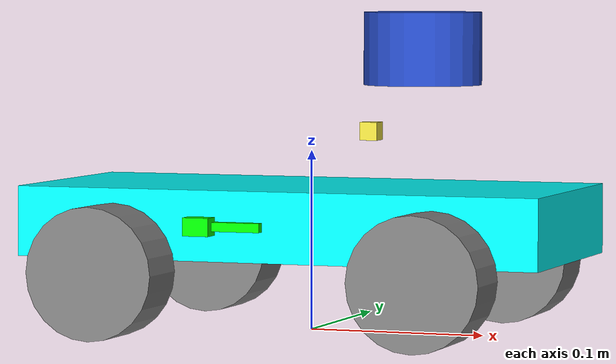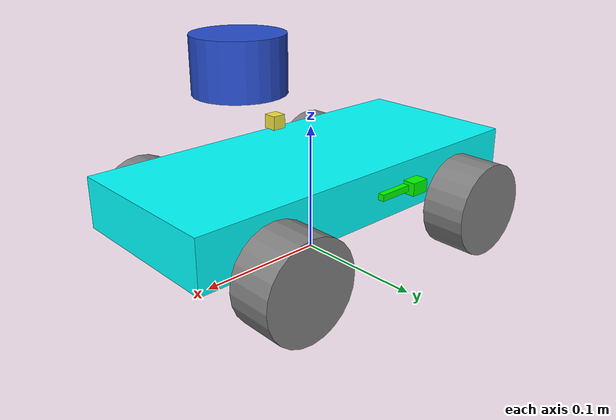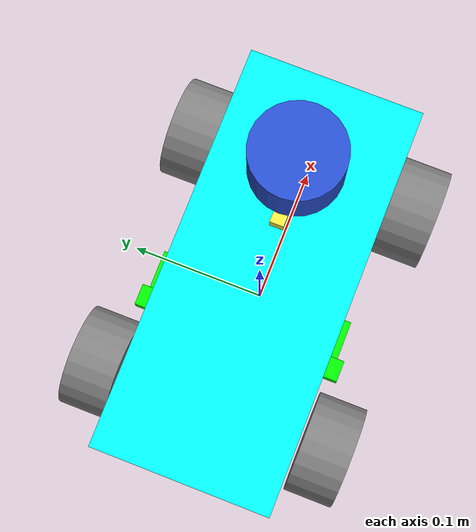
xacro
<?xml version="1.0"?>
<robot name="dummy1" xmlns:xacro="http://www.ros.org/wiki/xacro">
    <xacro:property name="base_width" value="0.130"/>
    <xacro:property name="base_length" value="0.3"/>
    <xacro:property name="base_height" value="0.039"/>

    <xacro:property name="wheel_radius" value="0.0365"/>
    <xacro:property name="wheel_width" value="0.035"/>
    <xacro:property name="wheel_ygap" value="0.020"/>
    <xacro:property name="wheel_zoff" value="0.025"/>
    <xacro:property name="wheel_xoff" value="0.183"/>
    <xacro:property name="bar_yoff" value="0.06"/>

    <material name="Gray">
        <color rgba="0.5 0.5 0.5 1.0"/>
    </material>
    <material name="Green">
        <color rgba="0.0 1.0 0.0 1.0"/>
    </material>
    <link name="base_footprint"/>

    <link name="base_link">
        <visual>
            <origin xyz="0.0 0.0 0.0" rpy="0.0 0.0 0.0"/>
            <geometry>
                <box size="${base_length} ${base_width} ${base_height}"/>
            </geometry>
            <material name="Cyan">
                <color rgba="0 1.0 1.0 1.0"/>
            </material>
        </visual>
    </link>

    <gazebo reference="base_link">
        <material>Gazebo/Black</material>
    </gazebo>

    <joint name="base_joint" type="fixed">
        <parent link="base_footprint"/>
        <child link="base_link"/>
        <origin xyz="0.0 0.0 ${wheel_radius + wheel_zoff}" rpy="0.0 0.0 0.0"/>
    </joint>
    <link name="laser">
        <visual>
            <geometry>
                <cylinder radius="0.0325" length="0.04"/>
            </geometry>
        </visual>
    </link>
    <joint name="laser_joint" type="fixed">
        <origin xyz="0.065 0.0 0.0960" />
        <parent link="base_link"/>
        <child link="laser"/>
    </joint>

    <gazebo reference="laser">
        <sensor name="lidar" type="ray">
            <always_on>true</always_on>
            <visualize>true</visualize>
            <update_rate>10</update_rate>
            <ray>
                <scan>
                    <horizontal>
                        <samples>5000</samples>
                        <resolution>0.500000</resolution>
                        <min_angle>-3.14159</min_angle>
                        <max_angle>3.14159</max_angle>
                    </horizontal>
                </scan>
                <range>
                    <min>0.12</min>
                    <max>10.0</max>
                    <resolution>0.015</resolution>
                </range>
                <noise>
                    <type>gaussian</type>
                    <mean>0.0</mean>
                    <stddev>0.01</stddev>
                </noise>
            </ray>
            <plugin name="scan" filename="libgazebo_ros_ray_sensor.so">
                <output_type>sensor_msgs/LaserScan</output_type>
                <frame_name>laser</frame_name>
            </plugin>
        </sensor>
    </gazebo>
    <gazebo reference="laser">
        <mu1>0.01</mu1>
        <mu2>0.01</mu2>
        <material>Gazebo/Blue</material>
    </gazebo>

<xacro:macro name="wheel" params="prefix x_reflect y_reflect">
    <link name="${prefix}_link">
        <visual>
            <origin xyz="0.0 0.0 0.0" rpy="${pi/2} 0.0 0.0"/>
            <geometry>
                <cylinder radius="${wheel_radius}" length="${wheel_width}"/>
            </geometry>
            <material name="Gray"/>
        </visual>
    </link>
    <joint name="${prefix}_joint" type="continuous">
        <parent link="base_link"/>
        <child link="${prefix}_link"/>
        <axis xyz="0.0 1.0 0.0"/>
        <origin xyz="${x_reflect*wheel_xoff/2} ${y_reflect*(base_width/2+wheel_ygap)} ${-wheel_zoff}" rpy="0.0 0.0 0.0"/>
    </joint>
</xacro:macro>
    <xacro:wheel prefix="driveRwhl_l" x_reflect="-1" y_reflect="1"/>
    <xacro:wheel prefix="driveRwhl_r" x_reflect="-1" y_reflect="-1"/>
<link name="steer_link">
    <visual>
        <origin xyz="-0.02 0.0 0.0" />
        <geometry>
            <box size="0.03 0.01995 0.005"/>
        </geometry>
        <material name="Gray"/>
    </visual>
    </link>
    <joint name="steer_joint" type="revolute">
        <origin xyz="0.0 0.0 0.0" rpy="0.0 0.0 0.0"/>
        <parent link="base_link"/>
        <child link="steer_link"/>
        <axis xyz="0.0 0.0 1"/>
        <limit lower="-0.5" upper="0.5" effort="100.0" velocity="10.0"/>
    </joint>
    <link name="front_L_bar_link">
        <visual>
            <origin xyz="-0.02 0.0 0.0" rpy="0.0 0.0 0.0"/>
            <geometry>
                <box size="0.03 0.01995 0.005"/>
            </geometry>
            <material name="Green"/>
        </visual>
    </link>
    <link name="front_R_bar_link">
        <visual>
            <origin xyz="-0.02 0.0 0.0" rpy="0.0 0.0 0.0"/>
            <geometry>
                <box size="0.03 0.01995 0.005"/>
            </geometry>
            <material name="Green"/>
        </visual>
    </link>
    <joint name="front_R_bar_joint" type="revolute">
        <origin xyz="0.0 ${-bar_yoff} 0.0" rpy="0.0 0.0 0.0"/>
        <parent link="base_link"/>
        <child link="front_R_bar_link"/>
        <axis xyz="0.0 0.0 1"/>
        <limit lower="-0.5" upper="0.5" effort="100" velocity="10.0"/>
    </joint>
    <joint name="front_L_bar_joint" type="revolute">
        <origin xyz="0.0 ${bar_yoff} 0.0" rpy="0.0 0.0 0.0"/>
        <parent link="base_link"/>
        <child link="front_L_bar_link"/>
        <axis xyz="0.0 0.0 1"/>
        <limit lower="-0.5" upper="0.5" effort="100" velocity="10.0"/>
    </joint>

    <link name="front_L_wheel_link">
        <visual>
            <origin rpy="${pi/2} 0.0 0.0"/>
            <geometry>
                <cylinder radius="${wheel_radius}" length="${wheel_width}"/>
            </geometry>
            <material name="Gray"/>
        </visual>
    </link>
    <joint name="front_left_wheel_joint" type="continuous">
        <parent link="front_L_bar_link"/>
        <child link="front_L_wheel_link"/>
        <axis xyz="0.0 1.0 0.0"/>
        <origin xyz="${wheel_xoff/2} ${(base_width/2-bar_yoff+(wheel_width/2))} ${-wheel_zoff}" rpy="0.0 0.0 0.0"/>
    </joint>

    <link name="front_R_wheel_link">
        <visual>
            <origin rpy="${pi/2} 0 0"/>
            <geometry>
                <cylinder radius="${wheel_radius}" length="${wheel_width}"/>
            </geometry>
            <material name="Gray"/>
        </visual>
    </link>
    <joint name="front_right_wheel_joint" type="continuous">
        <parent link="front_R_bar_link"/>
        <child link="front_R_wheel_link"/>
        <axis xyz="0.0 1.0 0.0"/>
        <origin xyz="${wheel_xoff/2} ${-1*((base_width/2)-bar_yoff+(wheel_width/2))} ${-wheel_zoff}" rpy="0.0 0.0 0.0"/>
    </joint>
    <link name="ackermann_bar_link">
        <visual>
            <geometry>
                <box size="0.015 0.15 0.01"/>
            </geometry>
            <material name="Green"/>
        </visual>
    </link>
    <joint name="ackermann_joint" type="revolute">
        <limit lower="-0.5" upper="0.5" effort="100" velocity="10"/>
        <axis xyz="0.0 0.0 1"/>
        <parent link="steer_link"/>
        <child link="ackermann_bar_link"/>
        <origin xyz="-0.04 0.0 0.0"/>
    </joint>

    <gazebo>
        <plugin name="gazebo_ros_ackerman_drive" filename="libgazebo_ros_ackermann_drive.so">
            <update_rate>100.0</update_rate>

            <front_left_joint>front_left_wheel_joint</front_left_joint>
            <front_right_joint>front_right_wheel_joint</front_right_joint>
            <rear_left_joint>driveRwhl_l_joint</rear_left_joint>
            <rear_right_joint>driveRwhl_r_joint</rear_right_joint>

            <left_steering_joint>front_L_bar_joint</left_steering_joint>
            <right_steering_joint>front_R_bar_joint</right_steering_joint>

            <max_steer>0.5233</max_steer>
            <max_steering_angle>2.0944</max_steering_angle>
            <max_speed>40</max_speed>

            <publish_odom>true</publish_odom>
            <publish_odom_tf>true</publish_odom_tf>
            <publish_wheel_tf>true</publish_wheel_tf>

            <odometry_frame>odom</odometry_frame>
            <robot_base_frame>base_link</robot_base_frame>
        </plugin>
    </gazebo>

    <link name="imu_link">
        <visual>
            <geometry>
                <box size="0.01 0.01 0.01"/>
            </geometry>
        </visual>
        <collision>
            <geometry>
                <box size="0.01 0.01 0.01"/>
            </geometry>
        </collision>
    </link>
    <joint name="imu_joint" type="fixed">
        <parent link="base_link"/>
        <child link="imu_link"/>
        <origin xyz="0.035 0.0 0.05"/>
    </joint>

    <gazebo reference="imu_link">
        <gravity>true</gravity>
        <sensor name="imu" type="imu">
            <always_on>true</always_on>
            <update_rate>50.0</update_rate>
            <visualize>true</visualize>
            <imu>
                <orientation>
                    <x>
                        <noise type="gaussian">
                            <mean>0.0</mean>
                            <stddev>2e-3</stddev>
                        </noise>
                    </x>
                    <y>
                        <noise type="gaussian">
                            <mean>0.0</mean>
                            <stddev>2e-3</stddev>
                        </noise>
                    </y>
                    <z>
                        <noise type="gaussian">
                            <mean>0.0</mean>
                            <stddev>2e-3</stddev>
                        </noise>
                    </z>
                </orientation>
                <angular_velocity>
                    <x>
                        <noise type="gaussian">
                            <mean>0.0</mean>
                            <stddev>2e-4</stddev>
                        </noise>
                    </x>
                    <y>
                        <noise type="gaussian">
                            <mean>0.0</mean>
                            <stddev>2e-4</stddev>
                        </noise>
                    </y>
                    <z>
                        <noise type="gaussian">
                            <mean>0.0</mean>
                            <stddev>2e-4</stddev>
                        </noise>
                    </z>
                </angular_velocity>
                <linear_acceleration>
                    <x>
                        <noise type="gaussian">
                            <mean>0.0</mean>
                            <stddev>1.7e-2</stddev>
                        </noise>
                    </x>
                    <y>
                        <noise type="gaussian">
                            <mean>0.0</mean>
                            <stddev>1.7e-2</stddev>
                        </noise>
                    </y>
                    <z>
                        <noise type="gaussian">
                            <mean>0.0</mean>
                            <stddev>1.7e-2</stddev>
                        </noise>
                    </z>
                </linear_acceleration>
            </imu>
            <plugin name="dummy1_imu" filename="libgazebo_ros_imu_sensor.so">
                <initial_orientation_as_reference>false</initial_orientation_as_reference>
                <frame_name>imu_link</frame_name>
            </plugin>
        </sensor>
    </gazebo>
</robot>
